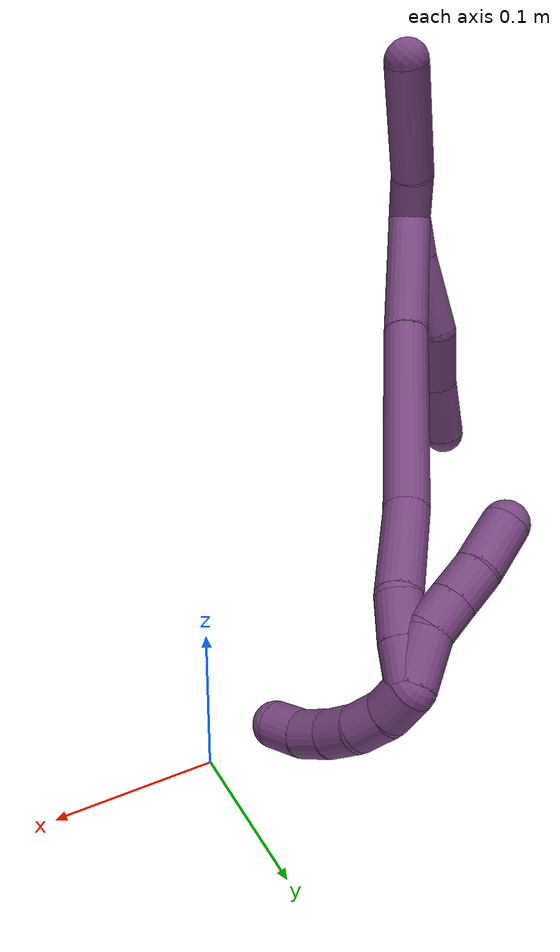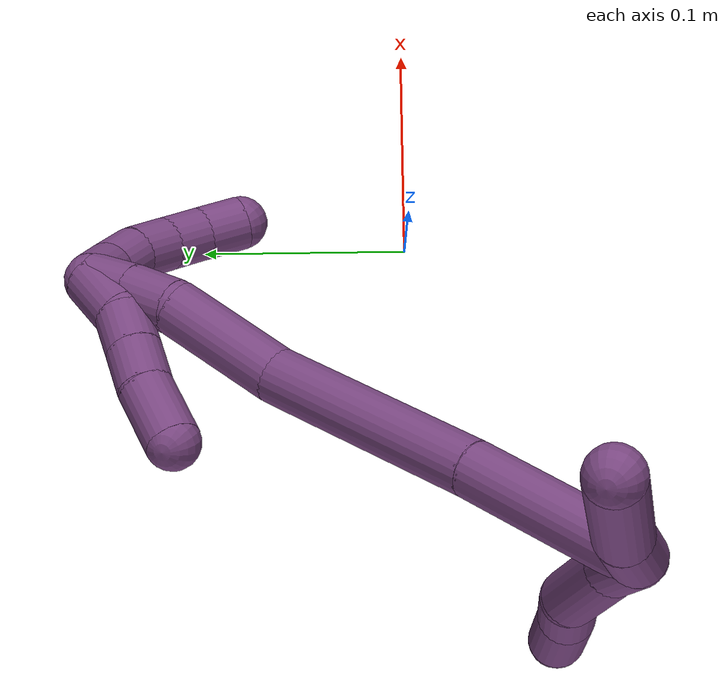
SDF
<sdf version="1.7">
 <world name="default">
  <model name="20">
   <static>0</static>
   <link name="20">
    <collision name="collision-cylinder-e_1_2_8">
     <pose>-0.007792 0.005546 -0.008232 -2.54872 -0.665509 1.69405</pose>
     <geometry><cylinder><radius>0.0125</radius><length>0.025238</length></cylinder></geometry>
     <surface>
      <friction><ode><mu>1.16</mu><mu2>1.16</mu2><slip1>0</slip1><slip2>0</slip2></ode></friction>
      <contact><ode><kp>1e+06</kp><kd>1</kd><max_vel>0</max_vel><min_depth>0.001</min_depth></ode></contact>
     </surface>
    </collision>
    <visual name="visual-cylinder-e_1_2_8">
     <pose>-0.007792 0.005546 -0.008232 -2.54872 -0.665509 1.69405</pose>
     <geometry><cylinder><radius>0.0125</radius><length>0.025238</length></cylinder></geometry>
     <material><ambient>0.478431 0.278431 0.509804 1</ambient></material>
    </visual>
    <collision name="collision-cylinder-e_2_8_9">
     <pose>-0.032444 0.020456 -0.030378 -2.54925 -0.788049 1.87531</pose>
     <geometry><cylinder><radius>0.0125</radius><length>0.047563</length></cylinder></geometry>
     <surface>
      <friction><ode><mu>1.16</mu><mu2>1.16</mu2><slip1>0</slip1><slip2>0</slip2></ode></friction>
      <contact><ode><kp>1e+06</kp><kd>1</kd><max_vel>0</max_vel><min_depth>0.001</min_depth></ode></contact>
     </surface>
    </collision>
    <visual name="visual-cylinder-e_2_8_9">
     <pose>-0.032444 0.020456 -0.030378 -2.54925 -0.788049 1.87531</pose>
     <geometry><cylinder><radius>0.0125</radius><length>0.047563</length></cylinder></geometry>
     <material><ambient>0.478431 0.278431 0.509804 1</ambient></material>
    </visual>
    <collision name="collision-cylinder-e_3_9_10">
     <pose>-0.061245 0.03194 -0.058656 -2.99502 -0.688258 2.73747</pose>
     <geometry><cylinder><radius>0.0125</radius><length>0.037597</length></cylinder></geometry>
     <surface>
      <friction><ode><mu>1.16</mu><mu2>1.16</mu2><slip1>0</slip1><slip2>0</slip2></ode></friction>
      <contact><ode><kp>1e+06</kp><kd>1</kd><max_vel>0</max_vel><min_depth>0.001</min_depth></ode></contact>
     </surface>
    </collision>
    <visual name="visual-cylinder-e_3_9_10">
     <pose>-0.061245 0.03194 -0.058656 -2.99502 -0.688258 2.73747</pose>
     <geometry><cylinder><radius>0.0125</radius><length>0.037597</length></cylinder></geometry>
     <material><ambient>0.478431 0.278431 0.509804 1</ambient></material>
    </visual>
    <collision name="collision-cylinder-e_4_10_6">
     <pose>-0.087011 0.03736 -0.086805 -2.90663 -0.772913 2.577</pose>
     <geometry><cylinder><radius>0.0125</radius><length>0.039603</length></cylinder></geometry>
     <surface>
      <friction><ode><mu>1.16</mu><mu2>1.16</mu2><slip1>0</slip1><slip2>0</slip2></ode></friction>
      <contact><ode><kp>1e+06</kp><kd>1</kd><max_vel>0</max_vel><min_depth>0.001</min_depth></ode></contact>
     </surface>
    </collision>
    <visual name="visual-cylinder-e_4_10_6">
     <pose>-0.087011 0.03736 -0.086805 -2.90663 -0.772913 2.577</pose>
     <geometry><cylinder><radius>0.0125</radius><length>0.039603</length></cylinder></geometry>
     <material><ambient>0.478431 0.278431 0.509804 1</ambient></material>
    </visual>
    <collision name="collision-cylinder-e_1_2_11">
     <pose>0.009596 0.001825 0.012123 -0.14943 0.66415 -0.051615</pose>
     <geometry><cylinder><radius>0.0125</radius><length>0.031138</length></cylinder></geometry>
     <surface>
      <friction><ode><mu>1.16</mu><mu2>1.16</mu2><slip1>0</slip1><slip2>0</slip2></ode></friction>
      <contact><ode><kp>1e+06</kp><kd>1</kd><max_vel>0</max_vel><min_depth>0.001</min_depth></ode></contact>
     </surface>
    </collision>
    <visual name="visual-cylinder-e_1_2_11">
     <pose>0.009596 0.001825 0.012123 -0.14943 0.66415 -0.051615</pose>
     <geometry><cylinder><radius>0.0125</radius><length>0.031138</length></cylinder></geometry>
     <material><ambient>0.478431 0.278431 0.509804 1</ambient></material>
    </visual>
    <collision name="collision-cylinder-e_2_11_5">
     <pose>0.04257 0.003763 0.049525 -0.004455 0.746316 -0.001744</pose>
     <geometry><cylinder><radius>0.0125</radius><length>0.068862</length></cylinder></geometry>
     <surface>
      <friction><ode><mu>1.16</mu><mu2>1.16</mu2><slip1>0</slip1><slip2>0</slip2></ode></friction>
      <contact><ode><kp>1e+06</kp><kd>1</kd><max_vel>0</max_vel><min_depth>0.001</min_depth></ode></contact>
     </surface>
    </collision>
    <visual name="visual-cylinder-e_2_11_5">
     <pose>0.04257 0.003763 0.049525 -0.004455 0.746316 -0.001744</pose>
     <geometry><cylinder><radius>0.0125</radius><length>0.068862</length></cylinder></geometry>
     <material><ambient>0.478431 0.278431 0.509804 1</ambient></material>
    </visual>
    <collision name="collision-cylinder-e_1_2_12">
     <pose>9e-06 0.03887 -0.016688 -1.97633 0.000219 -0.000333</pose>
     <geometry><cylinder><radius>0.0125</radius><length>0.084601</length></cylinder></geometry>
     <surface>
      <friction><ode><mu>1.16</mu><mu2>1.16</mu2><slip1>0</slip1><slip2>0</slip2></ode></friction>
      <contact><ode><kp>1e+06</kp><kd>1</kd><max_vel>0</max_vel><min_depth>0.001</min_depth></ode></contact>
     </surface>
    </collision>
    <visual name="visual-cylinder-e_1_2_12">
     <pose>9e-06 0.03887 -0.016688 -1.97633 0.000219 -0.000333</pose>
     <geometry><cylinder><radius>0.0125</radius><length>0.084601</length></cylinder></geometry>
     <material><ambient>0.478431 0.278431 0.509804 1</ambient></material>
    </visual>
    <collision name="collision-cylinder-e_2_12_13">
     <pose>-0.002658 0.128321 -0.055637 -1.98539 -0.048401 0.074163</pose>
     <geometry><cylinder><radius>0.0125</radius><length>0.110657</length></cylinder></geometry>
     <surface>
      <friction><ode><mu>1.16</mu><mu2>1.16</mu2><slip1>0</slip1><slip2>0</slip2></ode></friction>
      <contact><ode><kp>1e+06</kp><kd>1</kd><max_vel>0</max_vel><min_depth>0.001</min_depth></ode></contact>
     </surface>
    </collision>
    <visual name="visual-cylinder-e_2_12_13">
     <pose>-0.002658 0.128321 -0.055637 -1.98539 -0.048401 0.074163</pose>
     <geometry><cylinder><radius>0.0125</radius><length>0.110657</length></cylinder></geometry>
     <material><ambient>0.478431 0.278431 0.509804 1</ambient></material>
    </visual>
    <collision name="collision-cylinder-e_3_13_14">
     <pose>0.000502 0.206142 -0.0844 -1.8051 0.205495 -0.259767</pose>
     <geometry><cylinder><radius>0.0125</radius><length>0.057212</length></cylinder></geometry>
     <surface>
      <friction><ode><mu>1.16</mu><mu2>1.16</mu2><slip1>0</slip1><slip2>0</slip2></ode></friction>
      <contact><ode><kp>1e+06</kp><kd>1</kd><max_vel>0</max_vel><min_depth>0.001</min_depth></ode></contact>
     </surface>
    </collision>
    <visual name="visual-cylinder-e_3_13_14">
     <pose>0.000502 0.206142 -0.0844 -1.8051 0.205495 -0.259767</pose>
     <geometry><cylinder><radius>0.0125</radius><length>0.057212</length></cylinder></geometry>
     <material><ambient>0.478431 0.278431 0.509804 1</ambient></material>
    </visual>
    <collision name="collision-cylinder-e_4_14_15">
     <pose>0.005319 0.245026 -0.094896 -1.90127 -0.0827 0.115738</pose>
     <geometry><cylinder><radius>0.0125</radius><length>0.024706</length></cylinder></geometry>
     <surface>
      <friction><ode><mu>1.16</mu><mu2>1.16</mu2><slip1>0</slip1><slip2>0</slip2></ode></friction>
      <contact><ode><kp>1e+06</kp><kd>1</kd><max_vel>0</max_vel><min_depth>0.001</min_depth></ode></contact>
     </surface>
    </collision>
    <visual name="visual-cylinder-e_4_14_15">
     <pose>0.005319 0.245026 -0.094896 -1.90127 -0.0827 0.115738</pose>
     <geometry><cylinder><radius>0.0125</radius><length>0.024706</length></cylinder></geometry>
     <material><ambient>0.478431 0.278431 0.509804 1</ambient></material>
    </visual>
    <collision name="collision-cylinder-e_5_15_1">
     <pose>0.002933 0.267646 -0.1017 -1.82132 -0.119923 0.154353</pose>
     <geometry><cylinder><radius>0.0125</radius><length>0.022824</length></cylinder></geometry>
     <surface>
      <friction><ode><mu>1.16</mu><mu2>1.16</mu2><slip1>0</slip1><slip2>0</slip2></ode></friction>
      <contact><ode><kp>1e+06</kp><kd>1</kd><max_vel>0</max_vel><min_depth>0.001</min_depth></ode></contact>
     </surface>
    </collision>
    <visual name="visual-cylinder-e_5_15_1">
     <pose>0.002933 0.267646 -0.1017 -1.82132 -0.119923 0.154353</pose>
     <geometry><cylinder><radius>0.0125</radius><length>0.022824</length></cylinder></geometry>
     <material><ambient>0.478431 0.278431 0.509804 1</ambient></material>
    </visual>
    <collision name="collision-cylinder-e_1_1_16">
     <pose>0.000887 0.278724 -0.114485 -3.13144 -0.068109 2.84574</pose>
     <geometry><cylinder><radius>0.0125</radius><length>0.02</length></cylinder></geometry>
     <surface>
      <friction><ode><mu>1.16</mu><mu2>1.16</mu2><slip1>0</slip1><slip2>0</slip2></ode></friction>
      <contact><ode><kp>1e+06</kp><kd>1</kd><max_vel>0</max_vel><min_depth>0.001</min_depth></ode></contact>
     </surface>
    </collision>
    <visual name="visual-cylinder-e_1_1_16">
     <pose>0.000887 0.278724 -0.114485 -3.13144 -0.068109 2.84574</pose>
     <geometry><cylinder><radius>0.0125</radius><length>0.02</length></cylinder></geometry>
     <material><ambient>0.478431 0.278431 0.509804 1</ambient></material>
    </visual>
    <collision name="collision-cylinder-e_2_16_17">
     <pose>0.001234 0.27698 -0.134236 2.95503 0.102941 1.00671</pose>
     <geometry><cylinder><radius>0.0125</radius><length>0.02</length></cylinder></geometry>
     <surface>
      <friction><ode><mu>1.16</mu><mu2>1.16</mu2><slip1>0</slip1><slip2>0</slip2></ode></friction>
      <contact><ode><kp>1e+06</kp><kd>1</kd><max_vel>0</max_vel><min_depth>0.001</min_depth></ode></contact>
     </surface>
    </collision>
    <visual name="visual-cylinder-e_2_16_17">
     <pose>0.001234 0.27698 -0.134236 2.95503 0.102941 1.00671</pose>
     <geometry><cylinder><radius>0.0125</radius><length>0.02</length></cylinder></geometry>
     <material><ambient>0.478431 0.278431 0.509804 1</ambient></material>
    </visual>
    <collision name="collision-cylinder-e_3_17_18">
     <pose>0.002829 0.270927 -0.153064 2.70652 0.056749 0.255414</pose>
     <geometry><cylinder><radius>0.0125</radius><length>0.02</length></cylinder></geometry>
     <surface>
      <friction><ode><mu>1.16</mu><mu2>1.16</mu2><slip1>0</slip1><slip2>0</slip2></ode></friction>
      <contact><ode><kp>1e+06</kp><kd>1</kd><max_vel>0</max_vel><min_depth>0.001</min_depth></ode></contact>
     </surface>
    </collision>
    <visual name="visual-cylinder-e_3_17_18">
     <pose>0.002829 0.270927 -0.153064 2.70652 0.056749 0.255414</pose>
     <geometry><cylinder><radius>0.0125</radius><length>0.02</length></cylinder></geometry>
     <material><ambient>0.478431 0.278431 0.509804 1</ambient></material>
    </visual>
    <collision name="collision-cylinder-e_4_18_19">
     <pose>0.004667 0.261512 -0.17056 2.58886 0.12742 0.442499</pose>
     <geometry><cylinder><radius>0.0125</radius><length>0.02</length></cylinder></geometry>
     <surface>
      <friction><ode><mu>1.16</mu><mu2>1.16</mu2><slip1>0</slip1><slip2>0</slip2></ode></friction>
      <contact><ode><kp>1e+06</kp><kd>1</kd><max_vel>0</max_vel><min_depth>0.001</min_depth></ode></contact>
     </surface>
    </collision>
    <visual name="visual-cylinder-e_4_18_19">
     <pose>0.004667 0.261512 -0.17056 2.58886 0.12742 0.442499</pose>
     <geometry><cylinder><radius>0.0125</radius><length>0.02</length></cylinder></geometry>
     <material><ambient>0.478431 0.278431 0.509804 1</ambient></material>
    </visual>
    <collision name="collision-cylinder-e_5_19_4">
     <pose>0.008381 0.249475 -0.185885 2.36015 0.246873 0.585126</pose>
     <geometry><cylinder><radius>0.0125</radius><length>0.02</length></cylinder></geometry>
     <surface>
      <friction><ode><mu>1.16</mu><mu2>1.16</mu2><slip1>0</slip1><slip2>0</slip2></ode></friction>
      <contact><ode><kp>1e+06</kp><kd>1</kd><max_vel>0</max_vel><min_depth>0.001</min_depth></ode></contact>
     </surface>
    </collision>
    <visual name="visual-cylinder-e_5_19_4">
     <pose>0.008381 0.249475 -0.185885 2.36015 0.246873 0.585126</pose>
     <geometry><cylinder><radius>0.0125</radius><length>0.02</length></cylinder></geometry>
     <material><ambient>0.478431 0.278431 0.509804 1</ambient></material>
    </visual>
    <collision name="collision-cylinder-e_1_1_20">
     <pose>-0.000494 0.267217 -0.095864 0.922264 -0.143084 -0.071184</pose>
     <geometry><cylinder><radius>0.0125</radius><length>0.028919</length></cylinder></geometry>
     <surface>
      <friction><ode><mu>1.16</mu><mu2>1.16</mu2><slip1>0</slip1><slip2>0</slip2></ode></friction>
      <contact><ode><kp>1e+06</kp><kd>1</kd><max_vel>0</max_vel><min_depth>0.001</min_depth></ode></contact>
     </surface>
    </collision>
    <visual name="visual-cylinder-e_1_1_20">
     <pose>-0.000494 0.267217 -0.095864 0.922264 -0.143084 -0.071184</pose>
     <geometry><cylinder><radius>0.0125</radius><length>0.028919</length></cylinder></geometry>
     <material><ambient>0.478431 0.278431 0.509804 1</ambient></material>
    </visual>
    <collision name="collision-cylinder-e_2_20_21">
     <pose>-0.006877 0.249629 -0.0806 0.751176 -0.445128 -0.178002</pose>
     <geometry><cylinder><radius>0.0125</radius><length>0.02007</length></cylinder></geometry>
     <surface>
      <friction><ode><mu>1.16</mu><mu2>1.16</mu2><slip1>0</slip1><slip2>0</slip2></ode></friction>
      <contact><ode><kp>1e+06</kp><kd>1</kd><max_vel>0</max_vel><min_depth>0.001</min_depth></ode></contact>
     </surface>
    </collision>
    <visual name="visual-cylinder-e_2_20_21">
     <pose>-0.006877 0.249629 -0.0806 0.751176 -0.445128 -0.178002</pose>
     <geometry><cylinder><radius>0.0125</radius><length>0.02007</length></cylinder></geometry>
     <material><ambient>0.478431 0.278431 0.509804 1</ambient></material>
    </visual>
    <collision name="collision-cylinder-e_3_21_22">
     <pose>-0.015769 0.237131 -0.06713 0.744938 -0.456098 -0.180861</pose>
     <geometry><cylinder><radius>0.0125</radius><length>0.020757</length></cylinder></geometry>
     <surface>
      <friction><ode><mu>1.16</mu><mu2>1.16</mu2><slip1>0</slip1><slip2>0</slip2></ode></friction>
      <contact><ode><kp>1e+06</kp><kd>1</kd><max_vel>0</max_vel><min_depth>0.001</min_depth></ode></contact>
     </surface>
    </collision>
    <visual name="visual-cylinder-e_3_21_22">
     <pose>-0.015769 0.237131 -0.06713 0.744938 -0.456098 -0.180861</pose>
     <geometry><cylinder><radius>0.0125</radius><length>0.020757</length></cylinder></geometry>
     <material><ambient>0.478431 0.278431 0.509804 1</ambient></material>
    </visual>
    <collision name="collision-cylinder-e_4_22_3">
     <pose>-0.026417 0.220015 -0.051605 0.894026 -0.413404 -0.200374</pose>
     <geometry><cylinder><radius>0.0125</radius><length>0.030254</length></cylinder></geometry>
     <surface>
      <friction><ode><mu>1.16</mu><mu2>1.16</mu2><slip1>0</slip1><slip2>0</slip2></ode></friction>
      <contact><ode><kp>1e+06</kp><kd>1</kd><max_vel>0</max_vel><min_depth>0.001</min_depth></ode></contact>
     </surface>
    </collision>
    <visual name="visual-cylinder-e_4_22_3">
     <pose>-0.026417 0.220015 -0.051605 0.894026 -0.413404 -0.200374</pose>
     <geometry><cylinder><radius>0.0125</radius><length>0.030254</length></cylinder></geometry>
     <material><ambient>0.478431 0.278431 0.509804 1</ambient></material>
    </visual>
    <collision name="collision-sphere-3">
     <pose>-0.032494 0.209215 -0.04293 0 -0 0</pose>
     <geometry><sphere><radius>0.0125</radius></sphere></geometry>
     <surface>
      <friction><ode><mu>1.16</mu><mu2>1.16</mu2><slip1>0</slip1><slip2>0</slip2></ode></friction>
      <contact><ode><kp>1e+06</kp><kd>1</kd><max_vel>0</max_vel><min_depth>0.001</min_depth></ode></contact>
     </surface>
    </collision>
    <visual name="visual-sphere-3">
     <pose>-0.032494 0.209215 -0.04293 0 -0 0</pose>
     <geometry><sphere><radius>0.0125</radius></sphere></geometry>
     <material><ambient>0.478431 0.278431 0.509804 1</ambient></material>
    </visual>
    <collision name="collision-sphere-22">
     <pose>-0.02034 0.230814 -0.060281 0 -0 0</pose>
     <geometry><sphere><radius>0.0125</radius></sphere></geometry>
     <surface>
      <friction><ode><mu>1.16</mu><mu2>1.16</mu2><slip1>0</slip1><slip2>0</slip2></ode></friction>
      <contact><ode><kp>1e+06</kp><kd>1</kd><max_vel>0</max_vel><min_depth>0.001</min_depth></ode></contact>
     </surface>
    </collision>
    <visual name="visual-sphere-22">
     <pose>-0.02034 0.230814 -0.060281 0 -0 0</pose>
     <geometry><sphere><radius>0.0125</radius></sphere></geometry>
     <material><ambient>0.478431 0.278431 0.509804 1</ambient></material>
    </visual>
    <collision name="collision-sphere-21">
     <pose>-0.011198 0.243447 -0.07398 0 -0 0</pose>
     <geometry><sphere><radius>0.0125</radius></sphere></geometry>
     <surface>
      <friction><ode><mu>1.16</mu><mu2>1.16</mu2><slip1>0</slip1><slip2>0</slip2></ode></friction>
      <contact><ode><kp>1e+06</kp><kd>1</kd><max_vel>0</max_vel><min_depth>0.001</min_depth></ode></contact>
     </surface>
    </collision>
    <visual name="visual-sphere-21">
     <pose>-0.011198 0.243447 -0.07398 0 -0 0</pose>
     <geometry><sphere><radius>0.0125</radius></sphere></geometry>
     <material><ambient>0.478431 0.278431 0.509804 1</ambient></material>
    </visual>
    <collision name="collision-sphere-20">
     <pose>-0.002556 0.255811 -0.08722 0 -0 0</pose>
     <geometry><sphere><radius>0.0125</radius></sphere></geometry>
     <surface>
      <friction><ode><mu>1.16</mu><mu2>1.16</mu2><slip1>0</slip1><slip2>0</slip2></ode></friction>
      <contact><ode><kp>1e+06</kp><kd>1</kd><max_vel>0</max_vel><min_depth>0.001</min_depth></ode></contact>
     </surface>
    </collision>
    <visual name="visual-sphere-20">
     <pose>-0.002556 0.255811 -0.08722 0 -0 0</pose>
     <geometry><sphere><radius>0.0125</radius></sphere></geometry>
     <material><ambient>0.478431 0.278431 0.509804 1</ambient></material>
    </visual>
    <collision name="collision-sphere-4">
     <pose>0.010825 0.242645 -0.192769 0 -0 0</pose>
     <geometry><sphere><radius>0.0125</radius></sphere></geometry>
     <surface>
      <friction><ode><mu>1.16</mu><mu2>1.16</mu2><slip1>0</slip1><slip2>0</slip2></ode></friction>
      <contact><ode><kp>1e+06</kp><kd>1</kd><max_vel>0</max_vel><min_depth>0.001</min_depth></ode></contact>
     </surface>
    </collision>
    <visual name="visual-sphere-4">
     <pose>0.010825 0.242645 -0.192769 0 -0 0</pose>
     <geometry><sphere><radius>0.0125</radius></sphere></geometry>
     <material><ambient>0.478431 0.278431 0.509804 1</ambient></material>
    </visual>
    <collision name="collision-sphere-11">
     <pose>0.019193 0.00365 0.024246 0 -0 0</pose>
     <geometry><sphere><radius>0.0125</radius></sphere></geometry>
     <surface>
      <friction><ode><mu>1.16</mu><mu2>1.16</mu2><slip1>0</slip1><slip2>0</slip2></ode></friction>
      <contact><ode><kp>1e+06</kp><kd>1</kd><max_vel>0</max_vel><min_depth>0.001</min_depth></ode></contact>
     </surface>
    </collision>
    <visual name="visual-sphere-11">
     <pose>0.019193 0.00365 0.024246 0 -0 0</pose>
     <geometry><sphere><radius>0.0125</radius></sphere></geometry>
     <material><ambient>0.478431 0.278431 0.509804 1</ambient></material>
    </visual>
    <collision name="collision-sphere-6">
     <pose>-0.100837 0.04066 -0.100591 0 -0 0</pose>
     <geometry><sphere><radius>0.0125</radius></sphere></geometry>
     <surface>
      <friction><ode><mu>1.16</mu><mu2>1.16</mu2><slip1>0</slip1><slip2>0</slip2></ode></friction>
      <contact><ode><kp>1e+06</kp><kd>1</kd><max_vel>0</max_vel><min_depth>0.001</min_depth></ode></contact>
     </surface>
    </collision>
    <visual name="visual-sphere-6">
     <pose>-0.100837 0.04066 -0.100591 0 -0 0</pose>
     <geometry><sphere><radius>0.0125</radius></sphere></geometry>
     <material><ambient>0.478431 0.278431 0.509804 1</ambient></material>
    </visual>
    <collision name="collision-sphere-10">
     <pose>-0.073186 0.03406 -0.073019 0 -0 0</pose>
     <geometry><sphere><radius>0.0125</radius></sphere></geometry>
     <surface>
      <friction><ode><mu>1.16</mu><mu2>1.16</mu2><slip1>0</slip1><slip2>0</slip2></ode></friction>
      <contact><ode><kp>1e+06</kp><kd>1</kd><max_vel>0</max_vel><min_depth>0.001</min_depth></ode></contact>
     </surface>
    </collision>
    <visual name="visual-sphere-10">
     <pose>-0.073186 0.03406 -0.073019 0 -0 0</pose>
     <geometry><sphere><radius>0.0125</radius></sphere></geometry>
     <material><ambient>0.478431 0.278431 0.509804 1</ambient></material>
    </visual>
    <collision name="collision-sphere-9">
     <pose>-0.049304 0.029819 -0.044292 0 -0 0</pose>
     <geometry><sphere><radius>0.0125</radius></sphere></geometry>
     <surface>
      <friction><ode><mu>1.16</mu><mu2>1.16</mu2><slip1>0</slip1><slip2>0</slip2></ode></friction>
      <contact><ode><kp>1e+06</kp><kd>1</kd><max_vel>0</max_vel><min_depth>0.001</min_depth></ode></contact>
     </surface>
    </collision>
    <visual name="visual-sphere-9">
     <pose>-0.049304 0.029819 -0.044292 0 -0 0</pose>
     <geometry><sphere><radius>0.0125</radius></sphere></geometry>
     <material><ambient>0.478431 0.278431 0.509804 1</ambient></material>
    </visual>
    <collision name="collision-sphere-2">
     <geometry><sphere><radius>0.0125</radius></sphere></geometry>
     <surface>
      <friction><ode><mu>1.16</mu><mu2>1.16</mu2><slip1>0</slip1><slip2>0</slip2></ode></friction>
      <contact><ode><kp>1e+06</kp><kd>1</kd><max_vel>0</max_vel><min_depth>0.001</min_depth></ode></contact>
     </surface>
    </collision>
    <visual name="visual-sphere-2">
     <geometry><sphere><radius>0.0125</radius></sphere></geometry>
     <material><ambient>0.478431 0.278431 0.509804 1</ambient></material>
    </visual>
    <collision name="collision-sphere-19">
     <pose>0.005938 0.256304 -0.179002 0 -0 0</pose>
     <geometry><sphere><radius>0.0125</radius></sphere></geometry>
     <surface>
      <friction><ode><mu>1.16</mu><mu2>1.16</mu2><slip1>0</slip1><slip2>0</slip2></ode></friction>
      <contact><ode><kp>1e+06</kp><kd>1</kd><max_vel>0</max_vel><min_depth>0.001</min_depth></ode></contact>
     </surface>
    </collision>
    <visual name="visual-sphere-19">
     <pose>0.005938 0.256304 -0.179002 0 -0 0</pose>
     <geometry><sphere><radius>0.0125</radius></sphere></geometry>
     <material><ambient>0.478431 0.278431 0.509804 1</ambient></material>
    </visual>
    <collision name="collision-sphere-8">
     <pose>-0.015583 0.011092 -0.016464 0 -0 0</pose>
     <geometry><sphere><radius>0.0125</radius></sphere></geometry>
     <surface>
      <friction><ode><mu>1.16</mu><mu2>1.16</mu2><slip1>0</slip1><slip2>0</slip2></ode></friction>
      <contact><ode><kp>1e+06</kp><kd>1</kd><max_vel>0</max_vel><min_depth>0.001</min_depth></ode></contact>
     </surface>
    </collision>
    <visual name="visual-sphere-8">
     <pose>-0.015583 0.011092 -0.016464 0 -0 0</pose>
     <geometry><sphere><radius>0.0125</radius></sphere></geometry>
     <material><ambient>0.478431 0.278431 0.509804 1</ambient></material>
    </visual>
    <collision name="collision-sphere-5">
     <pose>0.065946 0.003876 0.074804 0 -0 0</pose>
     <geometry><sphere><radius>0.0125</radius></sphere></geometry>
     <surface>
      <friction><ode><mu>1.16</mu><mu2>1.16</mu2><slip1>0</slip1><slip2>0</slip2></ode></friction>
      <contact><ode><kp>1e+06</kp><kd>1</kd><max_vel>0</max_vel><min_depth>0.001</min_depth></ode></contact>
     </surface>
    </collision>
    <visual name="visual-sphere-5">
     <pose>0.065946 0.003876 0.074804 0 -0 0</pose>
     <geometry><sphere><radius>0.0125</radius></sphere></geometry>
     <material><ambient>0.478431 0.278431 0.509804 1</ambient></material>
    </visual>
    <collision name="collision-sphere-12">
     <pose>1.9e-05 0.07774 -0.033376 0 -0 0</pose>
     <geometry><sphere><radius>0.0125</radius></sphere></geometry>
     <surface>
      <friction><ode><mu>1.16</mu><mu2>1.16</mu2><slip1>0</slip1><slip2>0</slip2></ode></friction>
      <contact><ode><kp>1e+06</kp><kd>1</kd><max_vel>0</max_vel><min_depth>0.001</min_depth></ode></contact>
     </surface>
    </collision>
    <visual name="visual-sphere-12">
     <pose>1.9e-05 0.07774 -0.033376 0 -0 0</pose>
     <geometry><sphere><radius>0.0125</radius></sphere></geometry>
     <material><ambient>0.478431 0.278431 0.509804 1</ambient></material>
    </visual>
    <collision name="collision-sphere-13">
     <pose>-0.005335 0.178903 -0.077898 0 -0 0</pose>
     <geometry><sphere><radius>0.0125</radius></sphere></geometry>
     <surface>
      <friction><ode><mu>1.16</mu><mu2>1.16</mu2><slip1>0</slip1><slip2>0</slip2></ode></friction>
      <contact><ode><kp>1e+06</kp><kd>1</kd><max_vel>0</max_vel><min_depth>0.001</min_depth></ode></contact>
     </surface>
    </collision>
    <visual name="visual-sphere-13">
     <pose>-0.005335 0.178903 -0.077898 0 -0 0</pose>
     <geometry><sphere><radius>0.0125</radius></sphere></geometry>
     <material><ambient>0.478431 0.278431 0.509804 1</ambient></material>
    </visual>
    <collision name="collision-sphere-14">
     <pose>0.006339 0.233381 -0.090902 0 -0 0</pose>
     <geometry><sphere><radius>0.0125</radius></sphere></geometry>
     <surface>
      <friction><ode><mu>1.16</mu><mu2>1.16</mu2><slip1>0</slip1><slip2>0</slip2></ode></friction>
      <contact><ode><kp>1e+06</kp><kd>1</kd><max_vel>0</max_vel><min_depth>0.001</min_depth></ode></contact>
     </surface>
    </collision>
    <visual name="visual-sphere-14">
     <pose>0.006339 0.233381 -0.090902 0 -0 0</pose>
     <geometry><sphere><radius>0.0125</radius></sphere></geometry>
     <material><ambient>0.478431 0.278431 0.509804 1</ambient></material>
    </visual>
    <collision name="collision-sphere-15">
     <pose>0.004298 0.25667 -0.098891 0 -0 0</pose>
     <geometry><sphere><radius>0.0125</radius></sphere></geometry>
     <surface>
      <friction><ode><mu>1.16</mu><mu2>1.16</mu2><slip1>0</slip1><slip2>0</slip2></ode></friction>
      <contact><ode><kp>1e+06</kp><kd>1</kd><max_vel>0</max_vel><min_depth>0.001</min_depth></ode></contact>
     </surface>
    </collision>
    <visual name="visual-sphere-15">
     <pose>0.004298 0.25667 -0.098891 0 -0 0</pose>
     <geometry><sphere><radius>0.0125</radius></sphere></geometry>
     <material><ambient>0.478431 0.278431 0.509804 1</ambient></material>
    </visual>
    <collision name="collision-sphere-1">
     <pose>0.001568 0.278623 -0.104509 0 -0 0</pose>
     <geometry><sphere><radius>0.0125</radius></sphere></geometry>
     <surface>
      <friction><ode><mu>1.16</mu><mu2>1.16</mu2><slip1>0</slip1><slip2>0</slip2></ode></friction>
      <contact><ode><kp>1e+06</kp><kd>1</kd><max_vel>0</max_vel><min_depth>0.001</min_depth></ode></contact>
     </surface>
    </collision>
    <visual name="visual-sphere-1">
     <pose>0.001568 0.278623 -0.104509 0 -0 0</pose>
     <geometry><sphere><radius>0.0125</radius></sphere></geometry>
     <material><ambient>0.478431 0.278431 0.509804 1</ambient></material>
    </visual>
    <collision name="collision-sphere-18">
     <pose>0.003396 0.266719 -0.162118 0 -0 0</pose>
     <geometry><sphere><radius>0.0125</radius></sphere></geometry>
     <surface>
      <friction><ode><mu>1.16</mu><mu2>1.16</mu2><slip1>0</slip1><slip2>0</slip2></ode></friction>
      <contact><ode><kp>1e+06</kp><kd>1</kd><max_vel>0</max_vel><min_depth>0.001</min_depth></ode></contact>
     </surface>
    </collision>
    <visual name="visual-sphere-18">
     <pose>0.003396 0.266719 -0.162118 0 -0 0</pose>
     <geometry><sphere><radius>0.0125</radius></sphere></geometry>
     <material><ambient>0.478431 0.278431 0.509804 1</ambient></material>
    </visual>
    <collision name="collision-sphere-16">
     <pose>0.000207 0.278825 -0.124461 0 -0 0</pose>
     <geometry><sphere><radius>0.0125</radius></sphere></geometry>
     <surface>
      <friction><ode><mu>1.16</mu><mu2>1.16</mu2><slip1>0</slip1><slip2>0</slip2></ode></friction>
      <contact><ode><kp>1e+06</kp><kd>1</kd><max_vel>0</max_vel><min_depth>0.001</min_depth></ode></contact>
     </surface>
    </collision>
    <visual name="visual-sphere-16">
     <pose>0.000207 0.278825 -0.124461 0 -0 0</pose>
     <geometry><sphere><radius>0.0125</radius></sphere></geometry>
     <material><ambient>0.478431 0.278431 0.509804 1</ambient></material>
    </visual>
    <collision name="collision-sphere-17">
     <pose>0.002262 0.275135 -0.14401 0 -0 0</pose>
     <geometry><sphere><radius>0.0125</radius></sphere></geometry>
     <surface>
      <friction><ode><mu>1.16</mu><mu2>1.16</mu2><slip1>0</slip1><slip2>0</slip2></ode></friction>
      <contact><ode><kp>1e+06</kp><kd>1</kd><max_vel>0</max_vel><min_depth>0.001</min_depth></ode></contact>
     </surface>
    </collision>
    <visual name="visual-sphere-17">
     <pose>0.002262 0.275135 -0.14401 0 -0 0</pose>
     <geometry><sphere><radius>0.0125</radius></sphere></geometry>
     <material><ambient>0.478431 0.278431 0.509804 1</ambient></material>
    </visual>
    <inertial>
     <pose>-0.006991 0.128829 -0.05744 0 -0 0</pose>
     <mass>0.75</mass>
     <inertia>
      <ixx>0.000233</ixx>
      <ixy>0</ixy>
      <ixz>0</ixz>
      <iyy>2.2e-05</iyy>
      <iyz>0</iyz>
      <izz>-0.000188</izz>
     </inertia>
    </inertial>
   </link>
   <pose>-0.178721 -0.081339 0.29629 -0.233301 -0.566072 -0.199936</pose>
  </model>
 </world>
</sdf>
